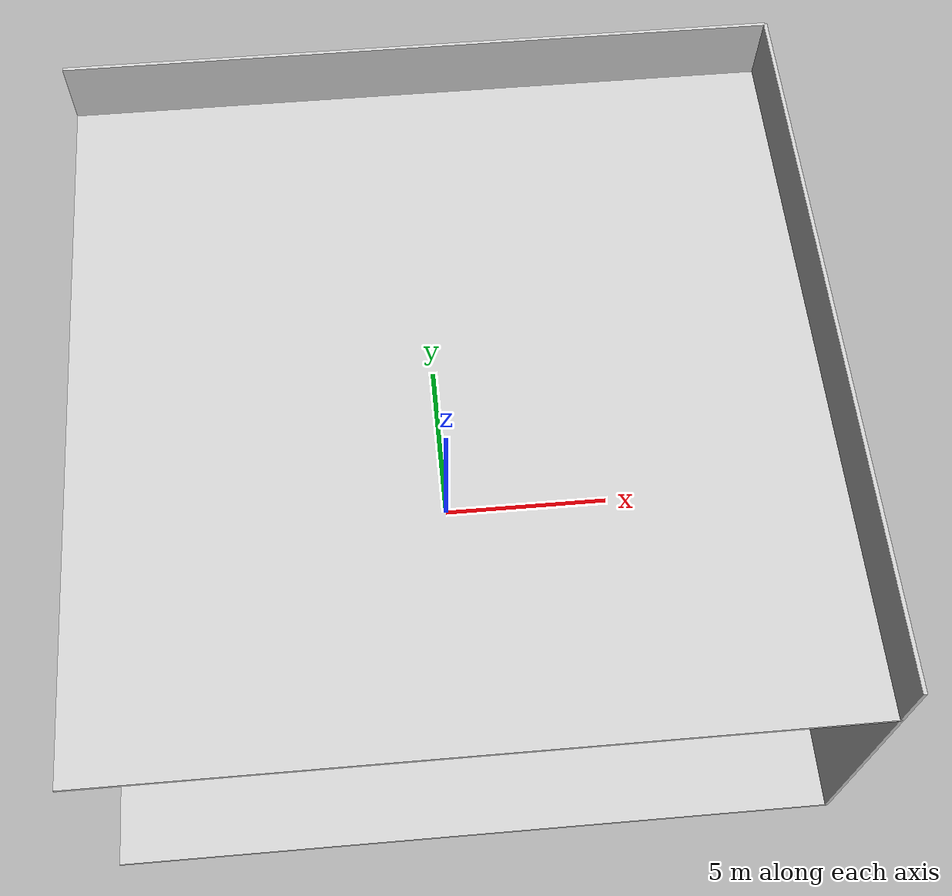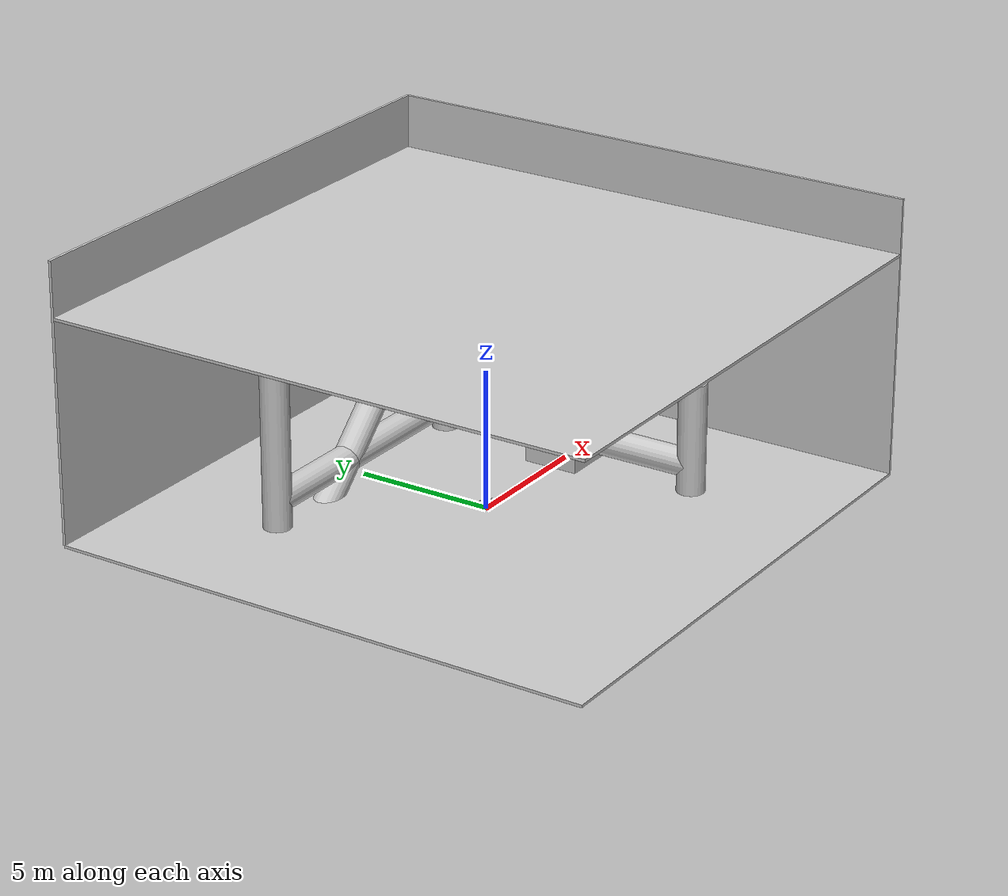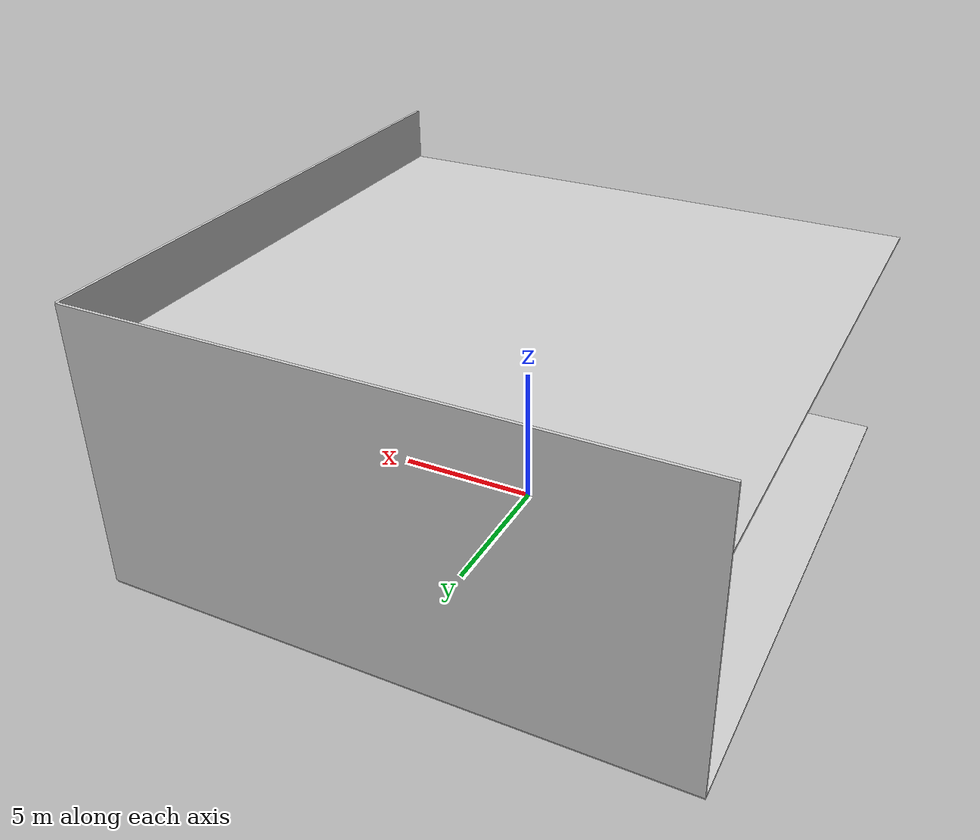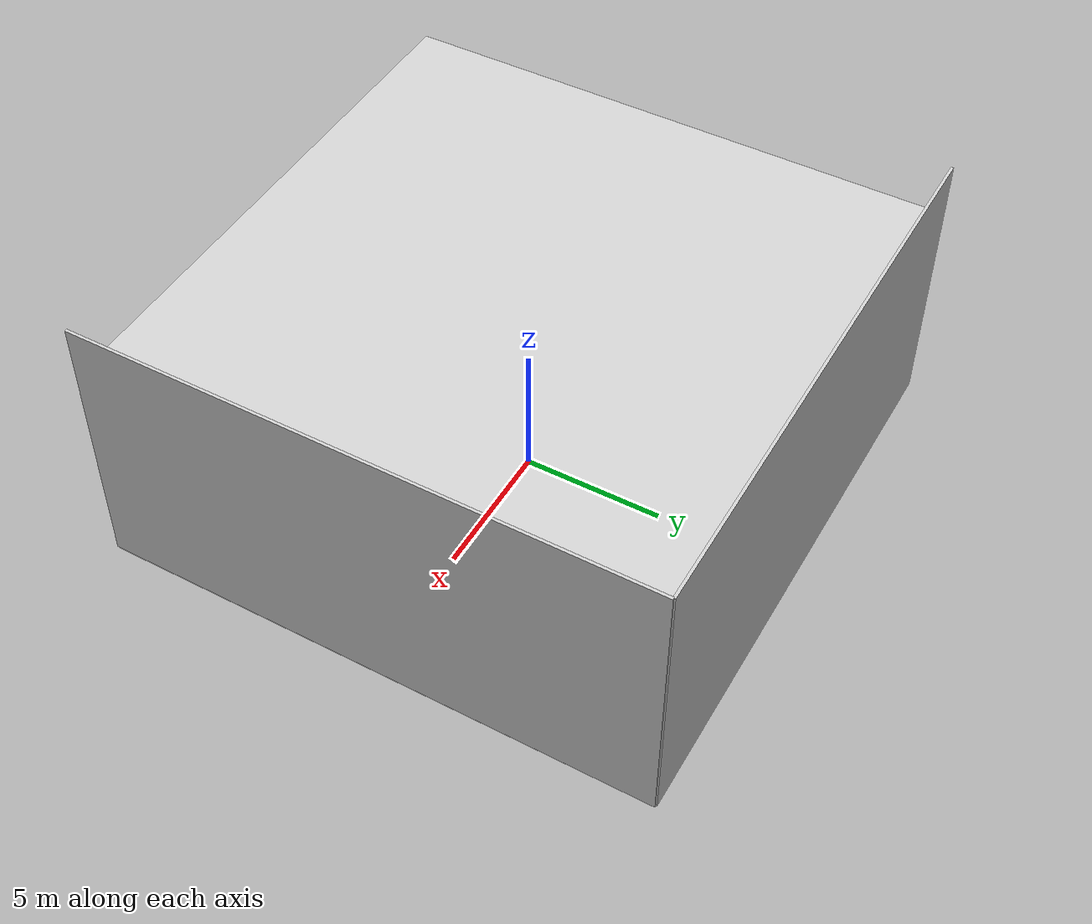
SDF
<?xml version="1.0"?>
<sdf version="1.5">
<world name="mrsim">
    <plugin filename="gz-sim-physics-system" name="gz::sim::systems::Physics"> </plugin>
    <plugin filename="gz-sim-scene-broadcaster-system" name="gz::sim::systems::SceneBroadcaster"> </plugin>
    <plugin filename="gz-sim-sensors-system" name="gz::sim::systems::Sensors">
        <render_engine>ogre2</render_engine>
    </plugin>
    <plugin filename="libgz-sim-imu-system" name="gz::sim::systems::Imu" />

    <physics type='ode'>
        <max_step_size>0.002000</max_step_size>
        <real_time_factor>1.000000</real_time_factor>
        <real_time_update_rate>500.000000</real_time_update_rate>
        <gravity>0 0 -9.81</gravity>
        <magnetic_field>23.816e-6 -0.41e-6 -39.829e-6</magnetic_field>
    </physics>

    <light type="directional" name="sun">
        <cast_shadows>false</cast_shadows>
        <pose>0 0 9.5 0 0 0</pose>
        <diffuse>0.8 0.8 0.8 1</diffuse>
        <specular>0.2 0.2 0.2 1</specular>
        <attenuation>
        <range>1000</range>
        <constant>0.9</constant>
        <linear>0.01</linear>
        <quadratic>0.001</quadratic>
        </attenuation>
        <direction>-0.5 0.1 -0.9</direction>
    </light>

    <model name="ground_plane">
        <static>true</static>
        <link name="link">
            <pose>0 0 -0.05 0 0 0</pose>
            <collision name="collision">
                <geometry>
                    <box>
                        <size>20 20 0.1</size>
                    </box>
                </geometry>
            </collision>
            <visual name="visual">
                <geometry>
                    <box>
                        <size>20 20 0.1</size>
                    </box>
                </geometry>
                <material>
                    <ambient>0.8 0.8 0.8 1</ambient>
                    <diffuse>0.8 0.8 0.8 1</diffuse>
                    <specular>0.8 0.8 0.8 1</specular>
                </material>
            </visual>
        </link>
    </model>

    <model name="textures">
        <static>true</static>
        <link name="wall_x">
            <pose>10 0 5 0 0 1.57</pose>
            <collision name="collision">
                <geometry>
                    <box>
                        <size>20 0.1 10.0</size>
                    </box>
                </geometry>
            </collision>
            <visual name="visual">
                <geometry>
                    <box>
                        <size>20 0.1 10.0</size>
                    </box>
                </geometry>
                <material>
                    <ambient>0.8 0.8 0.8 1</ambient>
                    <diffuse>0.8 0.8 0.8 1</diffuse>
                    <specular>0.8 0.8 0.8 1</specular>
                </material>
            </visual>
        </link>
        <link name="wall_y">
            <pose>0 10 5 0 0 0</pose>
            <collision name="collision">
                <geometry>
                    <box>
                        <size>20 0.1 10.0</size>
                    </box>
                </geometry>
            </collision>
            <visual name="visual">
                <geometry>
                    <box>
                        <size>20 0.1 10.0</size>
                    </box>
                </geometry>
                <material>
                    <ambient>0.8 0.8 0.8 1</ambient>
                    <diffuse>0.8 0.8 0.8 1</diffuse>
                    <specular>0.8 0.8 0.8 1</specular>
                </material>
            </visual>
        </link>
        <link name="roof">
            <pose>0 0 8 0 0 0</pose>
            <collision name="collision">
                <geometry>
                    <box>
                        <size>20 20 0.1</size>
                    </box>
                </geometry>
            </collision>
            <visual name="visual">
                <geometry>
                    <box>
                        <size>20 20 0.1</size>
                    </box>
                </geometry>
                <material>
                    <ambient>0.8 0.8 0.8 1</ambient>
                    <diffuse>0.8 0.8 0.8 1</diffuse>
                    <specular>0.8 0.8 0.8 1</specular>
                </material>
            </visual>
        </link>
        <link name="tpillar0">
            <pose>0 5 2 0 0.79 0</pose>
            <collision name="collision">
                <geometry>
                    <cylinder><radius>0.5</radius><length>10</length></cylinder>
                </geometry>
            </collision>
            <visual name="visual">
                <geometry>
                    <cylinder><radius>0.5</radius><length>10</length></cylinder>
                </geometry>
                <material>
                    <ambient>0.8 0.8 0.8 1</ambient>
                    <diffuse>0.8 0.8 0.8 1</diffuse>
                    <specular>0.8 0.8 0.8 1</specular>
                </material>
            </visual>
        </link>
        <link name="hpillar1">
            <pose>0 5 1 0 1.57 0</pose>
            <collision name="collision">
                <geometry>
                    <cylinder><radius>0.5</radius><length>10</length></cylinder>
                </geometry>
            </collision>
            <visual name="visual">
                <geometry>
                    <cylinder><radius>0.5</radius><length>10</length></cylinder>
                </geometry>
                <material>
                    <ambient>0.8 0.8 0.8 1</ambient>
                    <diffuse>0.8 0.8 0.8 1</diffuse>
                    <specular>0.8 0.8 0.8 1</specular>
                </material>
            </visual>
        </link>
        <link name="hpillar2">
            <pose>5 0 1 1.57 0 0</pose>
            <collision name="collision">
                <geometry>
                    <cylinder><radius>0.5</radius><length>10</length></cylinder>
                </geometry>
            </collision>
            <visual name="visual">
                <geometry>
                    <cylinder><radius>0.5</radius><length>10</length></cylinder>
                </geometry>
                <material>
                    <ambient>0.8 0.8 0.8 1</ambient>
                    <diffuse>0.8 0.8 0.8 1</diffuse>
                    <specular>0.8 0.8 0.8 1</specular>
                </material>
            </visual>
        </link>
        <link name="hpillar3">
            <pose>5 0 4 1.57 0 0</pose>
            <collision name="collision">
                <geometry>
                    <cylinder><radius>0.5</radius><length>10</length></cylinder>
                </geometry>
            </collision>
            <visual name="visual">
                <geometry>
                    <cylinder><radius>0.5</radius><length>10</length></cylinder>
                </geometry>
                <material>
                    <ambient>0.8 0.8 0.8 1</ambient>
                    <diffuse>0.8 0.8 0.8 1</diffuse>
                    <specular>0.8 0.8 0.8 1</specular>
                </material>
            </visual>
        </link>
        <link name="pillar1">
            <pose>5 5 2 0 0 0</pose>
            <collision name="collision">
                <geometry>
                    <cylinder><radius>0.5</radius><length>4</length></cylinder>
                </geometry>
            </collision>
            <visual name="visual">
                <geometry>
                    <cylinder><radius>0.5</radius><length>4</length></cylinder>
                </geometry>
                <material>
                    <ambient>0.8 0.8 0.8 1</ambient>
                    <diffuse>0.8 0.8 0.8 1</diffuse>
                    <specular>0.8 0.8 0.8 1</specular>
                </material>
            </visual>
        </link>
        <link name="pillar2">
            <pose>-5 5 3 0 0 0</pose>
            <collision name="collision">
                <geometry>
                    <cylinder><radius>0.5</radius><length>6</length></cylinder>
                </geometry>
            </collision>
            <visual name="visual">
                <geometry>
                    <cylinder><radius>0.5</radius><length>6</length></cylinder>
                </geometry>
                <material>
                    <ambient>0.8 0.8 0.8 1</ambient>
                    <diffuse>0.8 0.8 0.8 1</diffuse>
                    <specular>0.8 0.8 0.8 1</specular>
                </material>
            </visual>
        </link>
        <link name="pillar3">
            <pose>5 -5 2 0 0 0</pose>
            <collision name="collision">
                <geometry>
                    <cylinder><radius>0.5</radius><length>4</length></cylinder>
                </geometry>
            </collision>
            <visual name="visual">
                <geometry>
                    <cylinder><radius>0.5</radius><length>4</length></cylinder>
                </geometry>
                <material>
                    <ambient>0.8 0.8 0.8 1</ambient>
                    <diffuse>0.8 0.8 0.8 1</diffuse>
                    <specular>0.8 0.8 0.8 1</specular>
                </material>
            </visual>
        </link>
    </model>

    <model name="object">
        <link name="base">
                <pose>5 0 1 0 0 0</pose>
                <collision name="collision">
                    <geometry>
                        <box>
                            <size>2 2 2</size>
                        </box>
                    </geometry>
                </collision>
                <visual name="visual">
                    <geometry>
                        <box>
                            <size>2 2 2</size>
                        </box>
                        </geometry>
                    <material>
                        <ambient>0.8 0.8 0.8 1</ambient>
                        <diffuse>0.8 0.8 0.8 1</diffuse>
                        <specular>0.8 0.8 0.8 1</specular>
                    </material>
                </visual>
            </link>
    </model>

    <model name="qr">
        <pose>0 0 0.2 0 0 0</pose>
        <include>
            <uri>model://mrsim-quadrotor</uri>
            <name>qr</name>
        </include>
        <include>
            <pose>0 0 0.075 0 0 0</pose>
            <uri>model://livox-mid360</uri>
            <name>livox</name>
        </include>
        <joint name="lidar_joint" type="fixed">
            <parent>qr::base</parent>
            <child>livox::base</child>
        </joint>
    </model>

    <plugin name="optitrack" filename="optitrack-gazebo-2.0.so">
        <hz>1000</hz>
        <port>1509</port>
        <publish>
            <link>qr::livox::base</link>
            <name>qr</name>
        </publish>
    </plugin>
</world>
</sdf>

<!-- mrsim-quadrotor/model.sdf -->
<sdf version="1.5">
<model name="mrsim-quadrotor">
    <link name="base">
        <inertial>
            <mass>1.39</mass>
            <inertia>
                <ixx>0.015</ixx><ixy>0</ixy><ixz>0</ixz>
                <iyy>0.015</iyy><iyz>0</iyz>
                <izz>0.007</izz>
            </inertia>
        </inertial>

        <collision name="body">
            <geometry>
                <cylinder><radius>0.08</radius><length>0.05</length></cylinder>
            </geometry>
        </collision>

        <!-- three spheres to make contact stable -->
        <collision name="land_1">
            <pose>0.1 0 0 0 0 0</pose>
            <geometry>
                <sphere><radius>0.03</radius></sphere>
            </geometry>
        </collision>
        <collision name="land_2">
            <pose>-0.05 0.086 0 0 0 0</pose>
            <geometry>
                <sphere><radius>0.03</radius></sphere>
            </geometry>
        </collision>
        <collision name="land_3">
            <pose>-0.05 -0.086 0 0 0 0</pose>
            <geometry>
                <sphere><radius>0.03</radius></sphere>
            </geometry>
        </collision>

        <!-- contact for the arms -->
        <collision name="arm_1">
            <pose>0.125 0 0 0 1.5708 0</pose>
            <geometry>
                <cylinder><radius>0.01</radius><length>0.25</length></cylinder>
            </geometry>
        </collision>
        <collision name="arm_2">
            <pose>0 0.125 0 0 1.5708 1.5708</pose>
            <geometry>
                <cylinder><radius>0.01</radius><length>0.25</length></cylinder>
            </geometry>
        </collision>
        <collision name="arm_3">
            <pose>-0.125 0 0 0 1.5708 0</pose>
            <geometry>
                <cylinder><radius>0.01</radius><length>0.25</length></cylinder>
            </geometry>
        </collision>
        <collision name="arm_4">
            <pose>0 -0.125 0 0 1.5708 1.5708</pose>
            <geometry>
                <cylinder><radius>0.01</radius><length>0.25</length></cylinder>
            </geometry>
        </collision>

        <visual name="body">
            <geometry>
                <cylinder><radius>0.08</radius><length>0.05</length></cylinder>
            </geometry>
            <material>
                <diffuse>1.0 0.5 0.1 1</diffuse>
            </material>
        </visual>
        <visual name="arm-1">
            <pose>0.125 0 0 0 1.5708 0</pose>
            <geometry>
                <cylinder><radius>0.01</radius><length>0.25</length></cylinder>
            </geometry>
            <material>
                <diffuse>0.6 0.6 0.6 1</diffuse>
            </material>
        </visual>
        <visual name="arm-2">
            <pose>0 0.125 0 0 1.5708 1.5708</pose>
            <geometry>
                <cylinder><radius>0.01</radius><length>0.25</length></cylinder>
            </geometry>
            <material>
                <diffuse>0.6 0.6 0.6 1</diffuse>
            </material>
        </visual>
        <visual name="arm-3">
            <pose>-0.125 0 0 0 1.5708 0</pose>
            <geometry>
                <cylinder><radius>0.01</radius><length>0.25</length></cylinder>
            </geometry>
            <material>
                <diffuse>0.6 0.6 0.6 1</diffuse>
            </material>
        </visual>
        <visual name="arm-4">
            <pose>0 -0.125 0 0 1.5708 1.5708</pose>
            <geometry>
                <cylinder><radius>0.01</radius><length>0.25</length></cylinder>
            </geometry>
            <material>
                <diffuse>0.6 0.6 0.6 1</diffuse>
            </material>
        </visual>
    </link>

    <include>
        <uri>model://mrsim-rotor</uri>
        <name>rotor_1</name>
        <pose>0.23 0 0 0 0 0</pose>
    </include>
    <joint name="joint_rotor_1" type="revolute">
        <parent>base</parent>
        <child>rotor_1::propeller</child>
        <axis><xyz>0 0 1</xyz></axis>
    </joint>

    <include>
        <uri>model://mrsim-rotor</uri>
        <name>rotor_2</name>
        <pose>0 0.23 0 0 0 0</pose>
    </include>
    <joint name="joint_rotor_2" type="revolute">
        <parent>base</parent>
        <child>rotor_2::propeller</child>
        <axis><xyz>0 0 1</xyz></axis>
    </joint>

    <include>
        <uri>model://mrsim-rotor</uri>
        <name>rotor_3</name>
        <pose>-0.23 0 0 0 0 0</pose>
    </include>
    <joint name="joint_rotor_3" type="revolute">
        <parent>base</parent>
        <child>rotor_3::propeller</child>
        <axis><xyz>0 0 1</xyz></axis>
    </joint>

    <include>
        <uri>model://mrsim-rotor</uri>
        <name>rotor_4</name>
        <pose>0 -0.23 0 0 0 0</pose>
    </include>
    <joint name="joint_rotor_4" type="revolute">
        <parent>base</parent>
        <child>rotor_4::propeller</child>
        <axis><xyz>0 0 1</xyz></axis>
    </joint>

    <plugin name="mrsim" filename="mrsim-gazebo-2.0.so">
        <link>base</link>
        <rotors>
            <noise>0.03</noise>
            <cf>5.9e-4</cf>
            <ct>1e-5</ct>
            <rotor><joint spin="cw">joint_rotor_1</joint></rotor>
            <rotor><joint spin="ccw">joint_rotor_2</joint></rotor>
            <rotor><joint spin="cw">joint_rotor_3</joint></rotor>
            <rotor><joint spin="ccw">joint_rotor_4</joint></rotor>
        </rotors>
    </plugin>
</model>
</sdf>

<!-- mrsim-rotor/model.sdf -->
<sdf version="1.5">
  <model name="mrsim-rotor">
    <link name="propeller">
      <inertial>
        <mass>0.07</mass>
        <inertia>
          <ixx>4e-5</ixx><ixy>0</ixy><ixz>0</ixz>
          <iyy>4e-5</iyy><iyz>0</iyz>
          <izz>8e-5</izz>
        </inertia>
      </inertial>

      <collision name="collision">
        <pose>0 0 0.04 0 0 0</pose>
        <geometry>
          <cylinder><radius>0.127</radius><length>0.002</length></cylinder>
        </geometry>
      </collision>

      <visual name="motor">
        <pose>0 0 0.015 0 0 0</pose>
        <geometry>
          <cylinder><radius>0.015</radius><length>0.03</length></cylinder>
        </geometry>
        <material>
          <diffuse>0.6 0.6 0.6 1</diffuse>
        </material>
      </visual>

      <visual name="axle">
        <pose>0 0 0.035 0 0 0</pose>
        <geometry>
          <cylinder><radius>0.002</radius><length>0.01</length></cylinder>
        </geometry>
        <material>
          <diffuse>0.6 0.6 0.6 1</diffuse>
        </material>
      </visual>

      <visual name="blade">
        <pose>0 0 0.04 0 0 0</pose>
        <geometry>
          <box><size>0.25 0.03 0.002</size></box>
        </geometry>
        <material>
          <diffuse>0.6 0.6 0.6 1</diffuse>
        </material>
      </visual>
    </link>
  </model>
</sdf>

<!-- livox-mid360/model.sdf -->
<sdf version="1.9">
<model name="livox_mid360">
    <link name="base">
        <inertial>
            <mass>0.265</mass>
            <inertia>
                <ixx>0.000149</ixx>
                <iyy>0.000149</iyy>
                <izz>0.000140</izz>
                <ixy>0</ixy>
                <ixz>0</ixz>
                <iyz>0</iyz>
            </inertia>
        </inertial>

        <visual name="visual">
            <pose>0 0 -0.03 0 0 0</pose>
            <geometry>
                <cylinder>
                    <radius>0.0325</radius>
                    <length>0.06</length>
                </cylinder>
            </geometry>
            <material>
                <diffuse>0.1 0.3 0.8 1</diffuse>
            </material>
        </visual>

        <collision name="collision">
            <pose>0 0 -0.03 0 0 0</pose>
            <geometry>
                <cylinder>
                    <radius>0.0325</radius>
                    <length>0.06</length>
                </cylinder>
            </geometry>
        </collision>

        <sensor name="livox_lidar" type="gpu_lidar">
            <pose>0 0 0 0 0 0</pose>
            <topic>/livox/lidar</topic>
            <update_rate>10</update_rate>
            <always_on>true</always_on>
            <visualize>false</visualize>
            <ray>
                <scan>
                    <horizontal>
                        <samples>500</samples>
                        <resolution>1</resolution>
                        <min_angle>-3.1415926</min_angle>
                        <max_angle>3.1415926</max_angle>
                    </horizontal>
                    <vertical>
                        <samples>40</samples>
                        <resolution>1</resolution>
                        <min_angle>-0.122173</min_angle>
                        <max_angle>0.907571</max_angle>
                    </vertical>
                </scan>
                <range>
                    <min>0.25</min>
                    <max>100.0</max>
                    <resolution>0.01</resolution>
                </range>
                <noise>
                    <type>gaussian</type>
                    <mean>0.0</mean>
                    <stddev>0.02</stddev>
                </noise>
            </ray>
        </sensor>

        <sensor name="livox_imu" type="imu">
            <pose>0.011 0.02329 -0.04412 0 0 0</pose>
            <topic>/livox/imu</topic>
            <update_rate>200</update_rate>
            <always_on>true</always_on>
            <visualize>false</visualize>
            <imu>
                <angular_velocity>
                    <x>
                        <noise type="gaussian">
                            <mean>0.0</mean>
                            <stddev>0.00111</stddev>
                            <bias_mean>0.0</bias_mean>
                            <bias_stddev>0.0001</bias_stddev>
                        </noise>
                    </x>
                    <y>
                        <noise type="gaussian">
                            <mean>0.0</mean>
                            <stddev>0.00111</stddev>
                            <bias_mean>0.0</bias_mean>
                            <bias_stddev>0.0001</bias_stddev>
                        </noise>
                        </y>
                    <z>
                        <noise type="gaussian">
                            <mean>0.0</mean>
                            <stddev>0.00111</stddev>
                            <bias_mean>0.0</bias_mean>
                            <bias_stddev>0.0001</bias_stddev>
                        </noise>
                    </z>
                </angular_velocity>
                <linear_acceleration>
                    <x>
                        <noise type="gaussian">
                            <mean>0.0</mean>
                            <stddev>0.01387</stddev>
                            <bias_mean>0.0</bias_mean>
                            <bias_stddev>0.001</bias_stddev>
                        </noise>
                    </x>
                    <y>
                        <noise type="gaussian">
                            <mean>0.0</mean>
                            <stddev>0.01387</stddev>
                            <bias_mean>0.0</bias_mean>
                            <bias_stddev>0.001</bias_stddev>
                        </noise>
                    </y>
                    <z>
                        <noise type="gaussian">
                            <mean>0.0</mean>
                            <stddev>0.01387</stddev>
                            <bias_mean>0.0</bias_mean>
                            <bias_stddev>0.001</bias_stddev>
                        </noise>
                    </z>
                </linear_acceleration>
            </imu>
        </sensor>
    </link>
</model>
</sdf>
